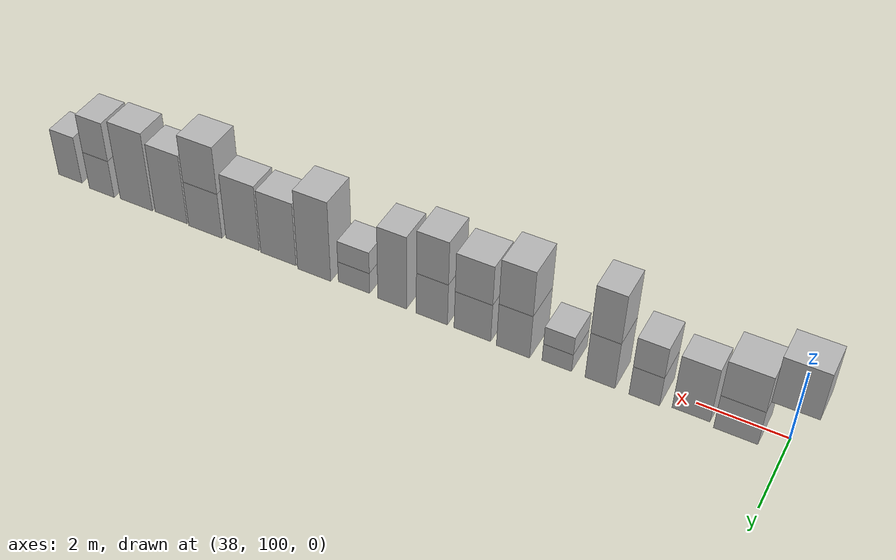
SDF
<sdf version="1.5">
 <world name="default">
  <model name="ground_plane">
   <static>true</static>
   <link name="link">
    <collision name="collision">
     <geometry><plane><normal>0 0 1</normal><size>250 250</size></plane></geometry>
     <surface><friction><ode><mu>1</mu><mu2>1</mu2></ode></friction></surface>
    </collision>
    <visual name="grass">
     <cast_shadows>false</cast_shadows>
     <geometry><mesh><uri>file://grass_plane/meshes/grass_plane.dae</uri></mesh></geometry>
    </visual>
   </link>
  </model>
  <model name="Cardboard_box_top_138">
   <link name="link_0">
    <pose>38 100 1.29616062008 0 0 0</pose>
    <inertial>
     <mass>1</mass>
     <inertia>
      <ixx>0.166667</ixx>
      <ixy>0</ixy>
      <ixz>0</ixz>
      <iyy>0.166667</iyy>
      <iyz>0</iyz>
      <izz>0.166667</izz>
     </inertia>
    </inertial>
    <collision name="collision">
     <geometry>
      <mesh>
       <uri>model://Cardboard_box/meshes/cardboard_box.dae</uri>
       <scale>2.47280669436 2.1447392296 3.2404015502</scale>
      </mesh>
     </geometry>
    </collision>
    <visual name="visual">
     <geometry>
      <mesh>
       <uri>model://Cardboard_box/meshes/cardboard_box.dae</uri>
       <scale>2.47280669436 2.1447392296 3.2404015502</scale>
      </mesh>
     </geometry>
    </visual>
   </link>
   <static>1</static>
  </model>
  <model name="Cardboard_box_139">
   <link name="link_0">
    <pose>39 100 0 0 0 0</pose>
    <inertial>
     <mass>1</mass>
     <inertia>
      <ixx>0.166667</ixx>
      <ixy>0</ixy>
      <ixz>0</ixz>
      <iyy>0.166667</iyy>
      <iyz>0</iyz>
      <izz>0.166667</izz>
     </inertia>
    </inertial>
    <collision name="collision">
     <geometry>
      <mesh>
       <uri>model://Cardboard_box/meshes/cardboard_box.dae</uri>
       <scale>2.38162424842 2.33850143931 2.49956711927</scale>
      </mesh>
     </geometry>
    </collision>
    <visual name="visual">
     <geometry>
      <mesh>
       <uri>model://Cardboard_box/meshes/cardboard_box.dae</uri>
       <scale>2.38162424842 2.33850143931 2.49956711927</scale>
      </mesh>
     </geometry>
    </visual>
   </link>
   <static>1</static>
  </model>
  <model name="Cardboard_box_top_139">
   <link name="link_0">
    <pose>39 100 0.999826847709 0 0 0</pose>
    <inertial>
     <mass>1</mass>
     <inertia>
      <ixx>0.166667</ixx>
      <ixy>0</ixy>
      <ixz>0</ixz>
      <iyy>0.166667</iyy>
      <iyz>0</iyz>
      <izz>0.166667</izz>
     </inertia>
    </inertial>
    <collision name="collision">
     <geometry>
      <mesh>
       <uri>model://Cardboard_box/meshes/cardboard_box.dae</uri>
       <scale>2.38162424842 2.33850143931 2.49956711927</scale>
      </mesh>
     </geometry>
    </collision>
    <visual name="visual">
     <geometry>
      <mesh>
       <uri>model://Cardboard_box/meshes/cardboard_box.dae</uri>
       <scale>2.38162424842 2.33850143931 2.49956711927</scale>
      </mesh>
     </geometry>
    </visual>
   </link>
   <static>1</static>
  </model>
  <model name="Cardboard_box_140">
   <link name="link_0">
    <pose>40 100 0 0 0 0</pose>
    <inertial>
     <mass>1</mass>
     <inertia>
      <ixx>0.166667</ixx>
      <ixy>0</ixy>
      <ixz>0</ixz>
      <iyy>0.166667</iyy>
      <iyz>0</iyz>
      <izz>0.166667</izz>
     </inertia>
    </inertial>
    <collision name="collision">
     <geometry>
      <mesh>
       <uri>model://Cardboard_box/meshes/cardboard_box.dae</uri>
       <scale>2.09163338009 1.78608967408 3.92391193913</scale>
      </mesh>
     </geometry>
    </collision>
    <visual name="visual">
     <geometry>
      <mesh>
       <uri>model://Cardboard_box/meshes/cardboard_box.dae</uri>
       <scale>2.09163338009 1.78608967408 3.92391193913</scale>
      </mesh>
     </geometry>
    </visual>
   </link>
   <static>1</static>
  </model>
  <model name="Cardboard_box_141">
   <link name="link_0">
    <pose>41 100 0 0 0 0</pose>
    <inertial>
     <mass>1</mass>
     <inertia>
      <ixx>0.166667</ixx>
      <ixy>0</ixy>
      <ixz>0</ixz>
      <iyy>0.166667</iyy>
      <iyz>0</iyz>
      <izz>0.166667</izz>
     </inertia>
    </inertial>
    <collision name="collision">
     <geometry>
      <mesh>
       <uri>model://Cardboard_box/meshes/cardboard_box.dae</uri>
       <scale>1.7197399909 2.20624652567 2.14068306579</scale>
      </mesh>
     </geometry>
    </collision>
    <visual name="visual">
     <geometry>
      <mesh>
       <uri>model://Cardboard_box/meshes/cardboard_box.dae</uri>
       <scale>1.7197399909 2.20624652567 2.14068306579</scale>
      </mesh>
     </geometry>
    </visual>
   </link>
   <static>1</static>
  </model>
  <model name="Cardboard_box_top_141">
   <link name="link_0">
    <pose>41 100 0.856273226314 0 0 0</pose>
    <inertial>
     <mass>1</mass>
     <inertia>
      <ixx>0.166667</ixx>
      <ixy>0</ixy>
      <ixz>0</ixz>
      <iyy>0.166667</iyy>
      <iyz>0</iyz>
      <izz>0.166667</izz>
     </inertia>
    </inertial>
    <collision name="collision">
     <geometry>
      <mesh>
       <uri>model://Cardboard_box/meshes/cardboard_box.dae</uri>
       <scale>1.7197399909 2.20624652567 2.14068306579</scale>
      </mesh>
     </geometry>
    </collision>
    <visual name="visual">
     <geometry>
      <mesh>
       <uri>model://Cardboard_box/meshes/cardboard_box.dae</uri>
       <scale>1.7197399909 2.20624652567 2.14068306579</scale>
      </mesh>
     </geometry>
    </visual>
   </link>
   <static>1</static>
  </model>
  <model name="Cardboard_box_142">
   <link name="link_0">
    <pose>42 100 0 0 0 0</pose>
    <inertial>
     <mass>1</mass>
     <inertia>
      <ixx>0.166667</ixx>
      <ixy>0</ixy>
      <ixz>0</ixz>
      <iyy>0.166667</iyy>
      <iyz>0</iyz>
      <izz>0.166667</izz>
     </inertia>
    </inertial>
    <collision name="collision">
     <geometry>
      <mesh>
       <uri>model://Cardboard_box/meshes/cardboard_box.dae</uri>
       <scale>1.71446901869 2.17648675688 3.39942016991</scale>
      </mesh>
     </geometry>
    </collision>
    <visual name="visual">
     <geometry>
      <mesh>
       <uri>model://Cardboard_box/meshes/cardboard_box.dae</uri>
       <scale>1.71446901869 2.17648675688 3.39942016991</scale>
      </mesh>
     </geometry>
    </visual>
   </link>
   <static>1</static>
  </model>
  <model name="Cardboard_box_top_142">
   <link name="link_0">
    <pose>42 100 1.35976806797 0 0 0</pose>
    <inertial>
     <mass>1</mass>
     <inertia>
      <ixx>0.166667</ixx>
      <ixy>0</ixy>
      <ixz>0</ixz>
      <iyy>0.166667</iyy>
      <iyz>0</iyz>
      <izz>0.166667</izz>
     </inertia>
    </inertial>
    <collision name="collision">
     <geometry>
      <mesh>
       <uri>model://Cardboard_box/meshes/cardboard_box.dae</uri>
       <scale>1.71446901869 2.17648675688 3.39942016991</scale>
      </mesh>
     </geometry>
    </collision>
    <visual name="visual">
     <geometry>
      <mesh>
       <uri>model://Cardboard_box/meshes/cardboard_box.dae</uri>
       <scale>1.71446901869 2.17648675688 3.39942016991</scale>
      </mesh>
     </geometry>
    </visual>
   </link>
   <static>1</static>
  </model>
  <model name="Cardboard_box_143">
   <link name="link_0">
    <pose>43 100 0 0 0 0</pose>
    <inertial>
     <mass>1</mass>
     <inertia>
      <ixx>0.166667</ixx>
      <ixy>0</ixy>
      <ixz>0</ixz>
      <iyy>0.166667</iyy>
      <iyz>0</iyz>
      <izz>0.166667</izz>
     </inertia>
    </inertial>
    <collision name="collision">
     <geometry>
      <mesh>
       <uri>model://Cardboard_box/meshes/cardboard_box.dae</uri>
       <scale>1.73547226631 2.12512170786 1.28088407148</scale>
      </mesh>
     </geometry>
    </collision>
    <visual name="visual">
     <geometry>
      <mesh>
       <uri>model://Cardboard_box/meshes/cardboard_box.dae</uri>
       <scale>1.73547226631 2.12512170786 1.28088407148</scale>
      </mesh>
     </geometry>
    </visual>
   </link>
   <static>1</static>
  </model>
  <model name="Cardboard_box_top_143">
   <link name="link_0">
    <pose>43 100 0.512353628591 0 0 0</pose>
    <inertial>
     <mass>1</mass>
     <inertia>
      <ixx>0.166667</ixx>
      <ixy>0</ixy>
      <ixz>0</ixz>
      <iyy>0.166667</iyy>
      <iyz>0</iyz>
      <izz>0.166667</izz>
     </inertia>
    </inertial>
    <collision name="collision">
     <geometry>
      <mesh>
       <uri>model://Cardboard_box/meshes/cardboard_box.dae</uri>
       <scale>1.73547226631 2.12512170786 1.28088407148</scale>
      </mesh>
     </geometry>
    </collision>
    <visual name="visual">
     <geometry>
      <mesh>
       <uri>model://Cardboard_box/meshes/cardboard_box.dae</uri>
       <scale>1.73547226631 2.12512170786 1.28088407148</scale>
      </mesh>
     </geometry>
    </visual>
   </link>
   <static>1</static>
  </model>
  <model name="Cardboard_box_144">
   <link name="link_0">
    <pose>44 100 0 0 0 0</pose>
    <inertial>
     <mass>1</mass>
     <inertia>
      <ixx>0.166667</ixx>
      <ixy>0</ixy>
      <ixz>0</ixz>
      <iyy>0.166667</iyy>
      <iyz>0</iyz>
      <izz>0.166667</izz>
     </inertia>
    </inertial>
    <collision name="collision">
     <geometry>
      <mesh>
       <uri>model://Cardboard_box/meshes/cardboard_box.dae</uri>
       <scale>1.99103314836 2.48200016469 3.18205837471</scale>
      </mesh>
     </geometry>
    </collision>
    <visual name="visual">
     <geometry>
      <mesh>
       <uri>model://Cardboard_box/meshes/cardboard_box.dae</uri>
       <scale>1.99103314836 2.48200016469 3.18205837471</scale>
      </mesh>
     </geometry>
    </visual>
   </link>
   <static>1</static>
  </model>
  <model name="Cardboard_box_top_144">
   <link name="link_0">
    <pose>44 100 1.27282334989 0 0 0</pose>
    <inertial>
     <mass>1</mass>
     <inertia>
      <ixx>0.166667</ixx>
      <ixy>0</ixy>
      <ixz>0</ixz>
      <iyy>0.166667</iyy>
      <iyz>0</iyz>
      <izz>0.166667</izz>
     </inertia>
    </inertial>
    <collision name="collision">
     <geometry>
      <mesh>
       <uri>model://Cardboard_box/meshes/cardboard_box.dae</uri>
       <scale>1.99103314836 2.48200016469 3.18205837471</scale>
      </mesh>
     </geometry>
    </collision>
    <visual name="visual">
     <geometry>
      <mesh>
       <uri>model://Cardboard_box/meshes/cardboard_box.dae</uri>
       <scale>1.99103314836 2.48200016469 3.18205837471</scale>
      </mesh>
     </geometry>
    </visual>
   </link>
   <static>1</static>
  </model>
  <model name="Cardboard_box_145">
   <link name="link_0">
    <pose>45 100 0 0 0 0</pose>
    <inertial>
     <mass>1</mass>
     <inertia>
      <ixx>0.166667</ixx>
      <ixy>0</ixy>
      <ixz>0</ixz>
      <iyy>0.166667</iyy>
      <iyz>0</iyz>
      <izz>0.166667</izz>
     </inertia>
    </inertial>
    <collision name="collision">
     <geometry>
      <mesh>
       <uri>model://Cardboard_box/meshes/cardboard_box.dae</uri>
       <scale>2.24768758859 2.26862821383 2.78564134686</scale>
      </mesh>
     </geometry>
    </collision>
    <visual name="visual">
     <geometry>
      <mesh>
       <uri>model://Cardboard_box/meshes/cardboard_box.dae</uri>
       <scale>2.24768758859 2.26862821383 2.78564134686</scale>
      </mesh>
     </geometry>
    </visual>
   </link>
   <static>1</static>
  </model>
  <model name="Cardboard_box_top_145">
   <link name="link_0">
    <pose>45 100 1.11425653874 0 0 0</pose>
    <inertial>
     <mass>1</mass>
     <inertia>
      <ixx>0.166667</ixx>
      <ixy>0</ixy>
      <ixz>0</ixz>
      <iyy>0.166667</iyy>
      <iyz>0</iyz>
      <izz>0.166667</izz>
     </inertia>
    </inertial>
    <collision name="collision">
     <geometry>
      <mesh>
       <uri>model://Cardboard_box/meshes/cardboard_box.dae</uri>
       <scale>2.24768758859 2.26862821383 2.78564134686</scale>
      </mesh>
     </geometry>
    </collision>
    <visual name="visual">
     <geometry>
      <mesh>
       <uri>model://Cardboard_box/meshes/cardboard_box.dae</uri>
       <scale>2.24768758859 2.26862821383 2.78564134686</scale>
      </mesh>
     </geometry>
    </visual>
   </link>
   <static>1</static>
  </model>
  <model name="Cardboard_box_146">
   <link name="link_0">
    <pose>46 100 0 0 0 0</pose>
    <inertial>
     <mass>1</mass>
     <inertia>
      <ixx>0.166667</ixx>
      <ixy>0</ixy>
      <ixz>0</ixz>
      <iyy>0.166667</iyy>
      <iyz>0</iyz>
      <izz>0.166667</izz>
     </inertia>
    </inertial>
    <collision name="collision">
     <geometry>
      <mesh>
       <uri>model://Cardboard_box/meshes/cardboard_box.dae</uri>
       <scale>1.95900426311 2.26103581628 3.06341857237</scale>
      </mesh>
     </geometry>
    </collision>
    <visual name="visual">
     <geometry>
      <mesh>
       <uri>model://Cardboard_box/meshes/cardboard_box.dae</uri>
       <scale>1.95900426311 2.26103581628 3.06341857237</scale>
      </mesh>
     </geometry>
    </visual>
   </link>
   <static>1</static>
  </model>
  <model name="Cardboard_box_top_146">
   <link name="link_0">
    <pose>46 100 1.22536742895 0 0 0</pose>
    <inertial>
     <mass>1</mass>
     <inertia>
      <ixx>0.166667</ixx>
      <ixy>0</ixy>
      <ixz>0</ixz>
      <iyy>0.166667</iyy>
      <iyz>0</iyz>
      <izz>0.166667</izz>
     </inertia>
    </inertial>
    <collision name="collision">
     <geometry>
      <mesh>
       <uri>model://Cardboard_box/meshes/cardboard_box.dae</uri>
       <scale>1.95900426311 2.26103581628 3.06341857237</scale>
      </mesh>
     </geometry>
    </collision>
    <visual name="visual">
     <geometry>
      <mesh>
       <uri>model://Cardboard_box/meshes/cardboard_box.dae</uri>
       <scale>1.95900426311 2.26103581628 3.06341857237</scale>
      </mesh>
     </geometry>
    </visual>
   </link>
   <static>1</static>
  </model>
  <model name="Cardboard_box_147">
   <link name="link_0">
    <pose>47 100 0 0 0 0</pose>
    <inertial>
     <mass>1</mass>
     <inertia>
      <ixx>0.166667</ixx>
      <ixy>0</ixy>
      <ixz>0</ixz>
      <iyy>0.166667</iyy>
      <iyz>0</iyz>
      <izz>0.166667</izz>
     </inertia>
    </inertial>
    <collision name="collision">
     <geometry>
      <mesh>
       <uri>model://Cardboard_box/meshes/cardboard_box.dae</uri>
       <scale>1.82962039798 2.22784613437 5.38536530008</scale>
      </mesh>
     </geometry>
    </collision>
    <visual name="visual">
     <geometry>
      <mesh>
       <uri>model://Cardboard_box/meshes/cardboard_box.dae</uri>
       <scale>1.82962039798 2.22784613437 5.38536530008</scale>
      </mesh>
     </geometry>
    </visual>
   </link>
   <static>1</static>
  </model>
  <model name="Cardboard_box_148">
   <link name="link_0">
    <pose>48 100 0 0 0 0</pose>
    <inertial>
     <mass>1</mass>
     <inertia>
      <ixx>0.166667</ixx>
      <ixy>0</ixy>
      <ixz>0</ixz>
      <iyy>0.166667</iyy>
      <iyz>0</iyz>
      <izz>0.166667</izz>
     </inertia>
    </inertial>
    <collision name="collision">
     <geometry>
      <mesh>
       <uri>model://Cardboard_box/meshes/cardboard_box.dae</uri>
       <scale>2.04622964582 2.0255153589 1.54765169517</scale>
      </mesh>
     </geometry>
    </collision>
    <visual name="visual">
     <geometry>
      <mesh>
       <uri>model://Cardboard_box/meshes/cardboard_box.dae</uri>
       <scale>2.04622964582 2.0255153589 1.54765169517</scale>
      </mesh>
     </geometry>
    </visual>
   </link>
   <static>1</static>
  </model>
  <model name="Cardboard_box_top_148">
   <link name="link_0">
    <pose>48 100 0.619060678066 0 0 0</pose>
    <inertial>
     <mass>1</mass>
     <inertia>
      <ixx>0.166667</ixx>
      <ixy>0</ixy>
      <ixz>0</ixz>
      <iyy>0.166667</iyy>
      <iyz>0</iyz>
      <izz>0.166667</izz>
     </inertia>
    </inertial>
    <collision name="collision">
     <geometry>
      <mesh>
       <uri>model://Cardboard_box/meshes/cardboard_box.dae</uri>
       <scale>2.04622964582 2.0255153589 1.54765169517</scale>
      </mesh>
     </geometry>
    </collision>
    <visual name="visual">
     <geometry>
      <mesh>
       <uri>model://Cardboard_box/meshes/cardboard_box.dae</uri>
       <scale>2.04622964582 2.0255153589 1.54765169517</scale>
      </mesh>
     </geometry>
    </visual>
   </link>
   <static>1</static>
  </model>
  <model name="Cardboard_box_149">
   <link name="link_0">
    <pose>49 100 0 0 0 0</pose>
    <inertial>
     <mass>1</mass>
     <inertia>
      <ixx>0.166667</ixx>
      <ixy>0</ixy>
      <ixz>0</ixz>
      <iyy>0.166667</iyy>
      <iyz>0</iyz>
      <izz>0.166667</izz>
     </inertia>
    </inertial>
    <collision name="collision">
     <geometry>
      <mesh>
       <uri>model://Cardboard_box/meshes/cardboard_box.dae</uri>
       <scale>2.2027181567 2.42542560644 5.91951855073</scale>
      </mesh>
     </geometry>
    </collision>
    <visual name="visual">
     <geometry>
      <mesh>
       <uri>model://Cardboard_box/meshes/cardboard_box.dae</uri>
       <scale>2.2027181567 2.42542560644 5.91951855073</scale>
      </mesh>
     </geometry>
    </visual>
   </link>
   <static>1</static>
  </model>
  <model name="Cardboard_box_150">
   <link name="link_0">
    <pose>50 100 0 0 0 0</pose>
    <inertial>
     <mass>1</mass>
     <inertia>
      <ixx>0.166667</ixx>
      <ixy>0</ixy>
      <ixz>0</ixz>
      <iyy>0.166667</iyy>
      <iyz>0</iyz>
      <izz>0.166667</izz>
     </inertia>
    </inertial>
    <collision name="collision">
     <geometry>
      <mesh>
       <uri>model://Cardboard_box/meshes/cardboard_box.dae</uri>
       <scale>2.39775185175 2.09933814929 4.69431587102</scale>
      </mesh>
     </geometry>
    </collision>
    <visual name="visual">
     <geometry>
      <mesh>
       <uri>model://Cardboard_box/meshes/cardboard_box.dae</uri>
       <scale>2.39775185175 2.09933814929 4.69431587102</scale>
      </mesh>
     </geometry>
    </visual>
   </link>
   <static>1</static>
  </model>
  <model name="Cardboard_box_151">
   <link name="link_0">
    <pose>51 100 0 0 0 0</pose>
    <inertial>
     <mass>1</mass>
     <inertia>
      <ixx>0.166667</ixx>
      <ixy>0</ixy>
      <ixz>0</ixz>
      <iyy>0.166667</iyy>
      <iyz>0</iyz>
      <izz>0.166667</izz>
     </inertia>
    </inertial>
    <collision name="collision">
     <geometry>
      <mesh>
       <uri>model://Cardboard_box/meshes/cardboard_box.dae</uri>
       <scale>2.32272581791 1.94524238344 4.85741700459</scale>
      </mesh>
     </geometry>
    </collision>
    <visual name="visual">
     <geometry>
      <mesh>
       <uri>model://Cardboard_box/meshes/cardboard_box.dae</uri>
       <scale>2.32272581791 1.94524238344 4.85741700459</scale>
      </mesh>
     </geometry>
    </visual>
   </link>
   <static>1</static>
  </model>
  <model name="Cardboard_box_152">
   <link name="link_0">
    <pose>52 100 0 0 0 0</pose>
    <inertial>
     <mass>1</mass>
     <inertia>
      <ixx>0.166667</ixx>
      <ixy>0</ixy>
      <ixz>0</ixz>
      <iyy>0.166667</iyy>
      <iyz>0</iyz>
      <izz>0.166667</izz>
     </inertia>
    </inertial>
    <collision name="collision">
     <geometry>
      <mesh>
       <uri>model://Cardboard_box/meshes/cardboard_box.dae</uri>
       <scale>2.35893712709 2.2367092417 3.3867719481</scale>
      </mesh>
     </geometry>
    </collision>
    <visual name="visual">
     <geometry>
      <mesh>
       <uri>model://Cardboard_box/meshes/cardboard_box.dae</uri>
       <scale>2.35893712709 2.2367092417 3.3867719481</scale>
      </mesh>
     </geometry>
    </visual>
   </link>
   <static>1</static>
  </model>
  <model name="Cardboard_box_top_152">
   <link name="link_0">
    <pose>52 100 1.35470877924 0 0 0</pose>
    <inertial>
     <mass>1</mass>
     <inertia>
      <ixx>0.166667</ixx>
      <ixy>0</ixy>
      <ixz>0</ixz>
      <iyy>0.166667</iyy>
      <iyz>0</iyz>
      <izz>0.166667</izz>
     </inertia>
    </inertial>
    <collision name="collision">
     <geometry>
      <mesh>
       <uri>model://Cardboard_box/meshes/cardboard_box.dae</uri>
       <scale>2.35893712709 2.2367092417 3.3867719481</scale>
      </mesh>
     </geometry>
    </collision>
    <visual name="visual">
     <geometry>
      <mesh>
       <uri>model://Cardboard_box/meshes/cardboard_box.dae</uri>
       <scale>2.35893712709 2.2367092417 3.3867719481</scale>
      </mesh>
     </geometry>
    </visual>
   </link>
   <static>1</static>
  </model>
  <model name="Cardboard_box_153">
   <link name="link_0">
    <pose>53 100 0 0 0 0</pose>
    <inertial>
     <mass>1</mass>
     <inertia>
      <ixx>0.166667</ixx>
      <ixy>0</ixy>
      <ixz>0</ixz>
      <iyy>0.166667</iyy>
      <iyz>0</iyz>
      <izz>0.166667</izz>
     </inertia>
    </inertial>
    <collision name="collision">
     <geometry>
      <mesh>
       <uri>model://Cardboard_box/meshes/cardboard_box.dae</uri>
       <scale>2.31297027299 2.06738674006 5.14879404915</scale>
      </mesh>
     </geometry>
    </collision>
    <visual name="visual">
     <geometry>
      <mesh>
       <uri>model://Cardboard_box/meshes/cardboard_box.dae</uri>
       <scale>2.31297027299 2.06738674006 5.14879404915</scale>
      </mesh>
     </geometry>
    </visual>
   </link>
   <static>1</static>
  </model>
  <model name="Cardboard_box_154">
   <link name="link_0">
    <pose>54 100 0 0 0 0</pose>
    <inertial>
     <mass>1</mass>
     <inertia>
      <ixx>0.166667</ixx>
      <ixy>0</ixy>
      <ixz>0</ixz>
      <iyy>0.166667</iyy>
      <iyz>0</iyz>
      <izz>0.166667</izz>
     </inertia>
    </inertial>
    <collision name="collision">
     <geometry>
      <mesh>
       <uri>model://Cardboard_box/meshes/cardboard_box.dae</uri>
       <scale>2.37323505942 2.13314122419 5.85494513619</scale>
      </mesh>
     </geometry>
    </collision>
    <visual name="visual">
     <geometry>
      <mesh>
       <uri>model://Cardboard_box/meshes/cardboard_box.dae</uri>
       <scale>2.37323505942 2.13314122419 5.85494513619</scale>
      </mesh>
     </geometry>
    </visual>
   </link>
   <static>1</static>
  </model>
  <model name="Cardboard_box_155">
   <link name="link_0">
    <pose>55 100 0 0 0 0</pose>
    <inertial>
     <mass>1</mass>
     <inertia>
      <ixx>0.166667</ixx>
      <ixy>0</ixy>
      <ixz>0</ixz>
      <iyy>0.166667</iyy>
      <iyz>0</iyz>
      <izz>0.166667</izz>
     </inertia>
    </inertial>
    <collision name="collision">
     <geometry>
      <mesh>
       <uri>model://Cardboard_box/meshes/cardboard_box.dae</uri>
       <scale>1.85493388247 2.32132256784 2.8031012673</scale>
      </mesh>
     </geometry>
    </collision>
    <visual name="visual">
     <geometry>
      <mesh>
       <uri>model://Cardboard_box/meshes/cardboard_box.dae</uri>
       <scale>1.85493388247 2.32132256784 2.8031012673</scale>
      </mesh>
     </geometry>
    </visual>
   </link>
   <static>1</static>
  </model>
  <model name="Cardboard_box_top_155">
   <link name="link_0">
    <pose>55 100 1.12124050692 0 0 0</pose>
    <inertial>
     <mass>1</mass>
     <inertia>
      <ixx>0.166667</ixx>
      <ixy>0</ixy>
      <ixz>0</ixz>
      <iyy>0.166667</iyy>
      <iyz>0</iyz>
      <izz>0.166667</izz>
     </inertia>
    </inertial>
    <collision name="collision">
     <geometry>
      <mesh>
       <uri>model://Cardboard_box/meshes/cardboard_box.dae</uri>
       <scale>1.85493388247 2.32132256784 2.8031012673</scale>
      </mesh>
     </geometry>
    </collision>
    <visual name="visual">
     <geometry>
      <mesh>
       <uri>model://Cardboard_box/meshes/cardboard_box.dae</uri>
       <scale>1.85493388247 2.32132256784 2.8031012673</scale>
      </mesh>
     </geometry>
    </visual>
   </link>
   <static>1</static>
  </model>
  <model name="Cardboard_box_156">
   <link name="link_0">
    <pose>56 100 0 0 0 0</pose>
    <inertial>
     <mass>1</mass>
     <inertia>
      <ixx>0.166667</ixx>
      <ixy>0</ixy>
      <ixz>0</ixz>
      <iyy>0.166667</iyy>
      <iyz>0</iyz>
      <izz>0.166667</izz>
     </inertia>
    </inertial>
    <collision name="collision">
     <geometry>
      <mesh>
       <uri>model://Cardboard_box/meshes/cardboard_box.dae</uri>
       <scale>1.77449129795 2.00446384632 3.50782166855</scale>
      </mesh>
     </geometry>
    </collision>
    <visual name="visual">
     <geometry>
      <mesh>
       <uri>model://Cardboard_box/meshes/cardboard_box.dae</uri>
       <scale>1.77449129795 2.00446384632 3.50782166855</scale>
      </mesh>
     </geometry>
    </visual>
   </link>
   <static>1</static>
  </model>
 </world>
</sdf>
